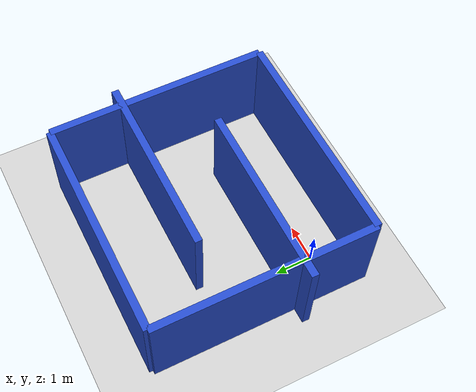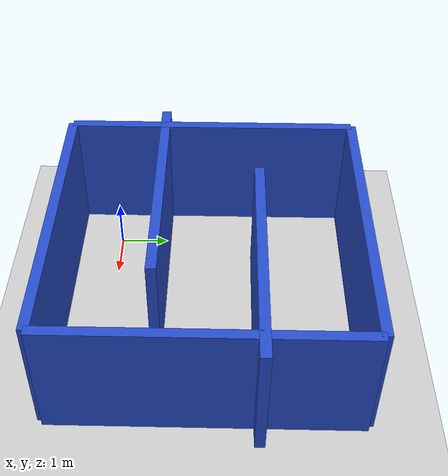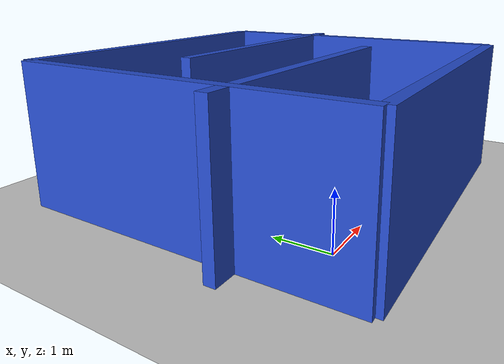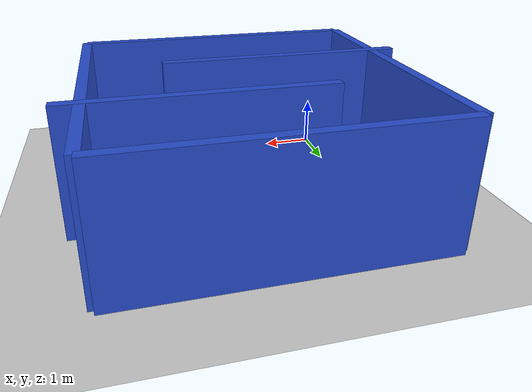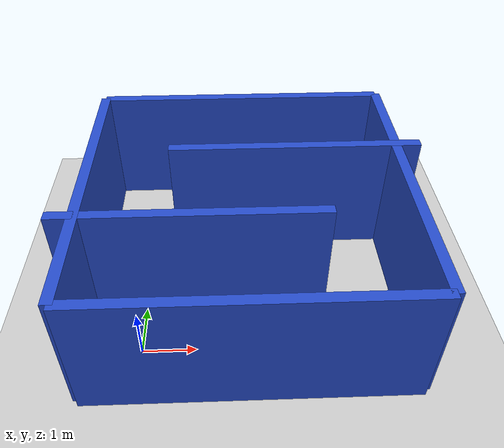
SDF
<?xml version="1.0"?>
<sdf version="1.4">
  <world name="default">

    <include>
      <uri>model://ground_plane</uri>
    </include>

    <include>
      <uri>model://sun</uri>
    </include>

    <include>
      <pose>2 2 0 0 0 0</pose>
      <uri>model://plan_test5</uri>
    </include>

      </world>
</sdf>

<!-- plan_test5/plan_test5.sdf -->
<sdf version='1.4'>
  <model name="plan_test1">
    <static>1</static>
    <link name ="west_wall">
      <visual name="west_wall">
	<pose>-3 0 1.25 0 -0 0</pose>
        <geometry>
          <box>
            <size>0.2 6 2.5</size>
          </box>
        </geometry>
        <material>
          <script>
            <uri>file://media/materials/scripts/gazebo.material</uri>
            <name>Gazebo/Blue</name>
          </script>
        </material>
      </visual>
      <collision name='west_wall'>
        <geometry>
          <box>
	    <size>0.2 6 2.5</size>
          </box>
        </geometry>
        <pose>-3.0 0 1.25 0 -0 0</pose>
      </collision>
     </link>

     <link name ="east_wall">
      <visual name="east_wall">
	<pose>3.0 0 1.25 0 -0 0</pose>
        <geometry>
          <box>
            <size>0.2 6 2.5</size>
          </box>
        </geometry>
        <material>
          <script>
            <uri>file://media/materials/scripts/gazebo.material</uri>
            <name>Gazebo/Blue</name>
          </script>
        </material>
      </visual>
      <collision name='east_wall'>
        <geometry>
          <box>
	    <size>0.2 6 2.5</size>
          </box>
        </geometry>
        <pose>3.0 0 1.25 0 -0 0</pose>
      </collision>
     </link>

     <link name ="north_wall">
      <visual name="north_wall">
	<pose>0 3.0 1.25 0 -0 0</pose>
        <geometry>
          <box>
            <size>6 0.2 2.5</size>
          </box>
        </geometry>
        <material>
          <script>
            <uri>file://media/materials/scripts/gazebo.material</uri>
            <name>Gazebo/Blue</name>
          </script>
        </material>
      </visual>
      <collision name='north_wall'>
        <geometry>
          <box>
	    <size>6 0.2 2.5</size>
          </box>
        </geometry>
        <pose>0 3.0 1.25 0 -0 0</pose>
      </collision>
     </link>

     <link name ="south_wall">
      <visual name="south_wall">
	<pose>0 -3.0 1.25 0 -0 0</pose>
        <geometry>
          <box>
            <size>6 0.2 2.5</size>
          </box>
        </geometry>
        <material>
          <script>
            <uri>file://media/materials/scripts/gazebo.material</uri>
            <name>Gazebo/Blue</name>
          </script>
        </material>
      </visual>
      <collision name='south_wall'>
        <geometry>
          <box>
	    <size>6 0.2 2.5</size>
          </box>
        </geometry>
        <pose>0 -3.0 1.25 0 -0 0</pose>
      </collision>
     </link>

     <link name ="mid1">
      <visual name="mid1">
	<pose>-1.0 -1.0 1.25 0 -0 0</pose>
        <geometry>
          <box>
            <size> 5 0.2 2.5</size>
          </box>
        </geometry>
        <material>
          <script>
            <uri>file://media/materials/scripts/gazebo.material</uri>
            <name>Gazebo/Blue</name>
          </script>
        </material>
      </visual>
      <collision name='mid1'>
        <geometry>
          <box>
	     <size> 5 0.2 2.5</size>
          </box>
        </geometry>
        <pose>-1.0 -1.0 1.25 0 -0 0</pose>
      </collision>
     </link>

     <link name ="mid2">
      <visual name="mid2">
	<pose>1.0 1.0 1.25 0 -0 0</pose>
        <geometry>
          <box>
            <size> 5 0.2 2.5</size>
          </box>
        </geometry>
        <material>
          <script>
            <uri>file://media/materials/scripts/gazebo.material</uri>
            <name>Gazebo/Blue</name>
          </script>
        </material>
      </visual>
      <collision name='mid2'>
        <geometry>
          <box>
	    <size> 5 0.2 2.5</size>
          </box>
        </geometry>
        <pose>1.0 1.0 1.25 0 -0 0</pose>
      </collision>
     </link>

  </model>
</sdf>
